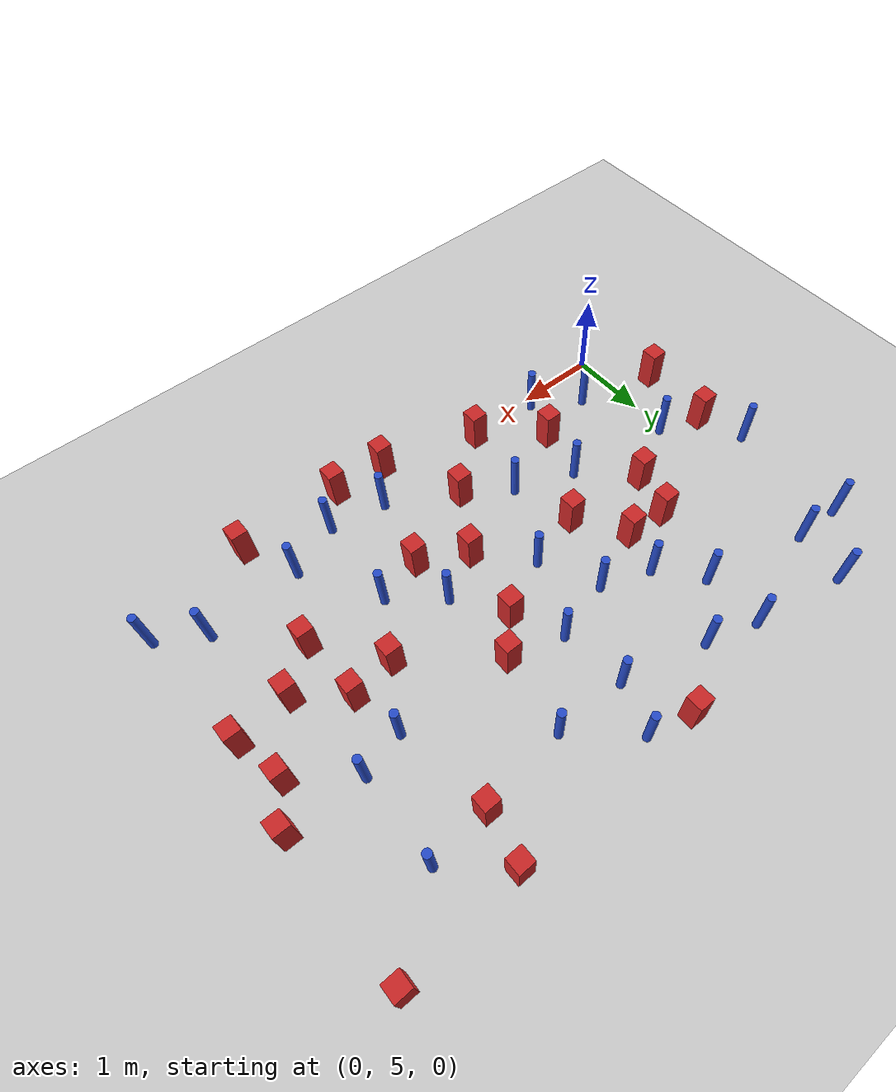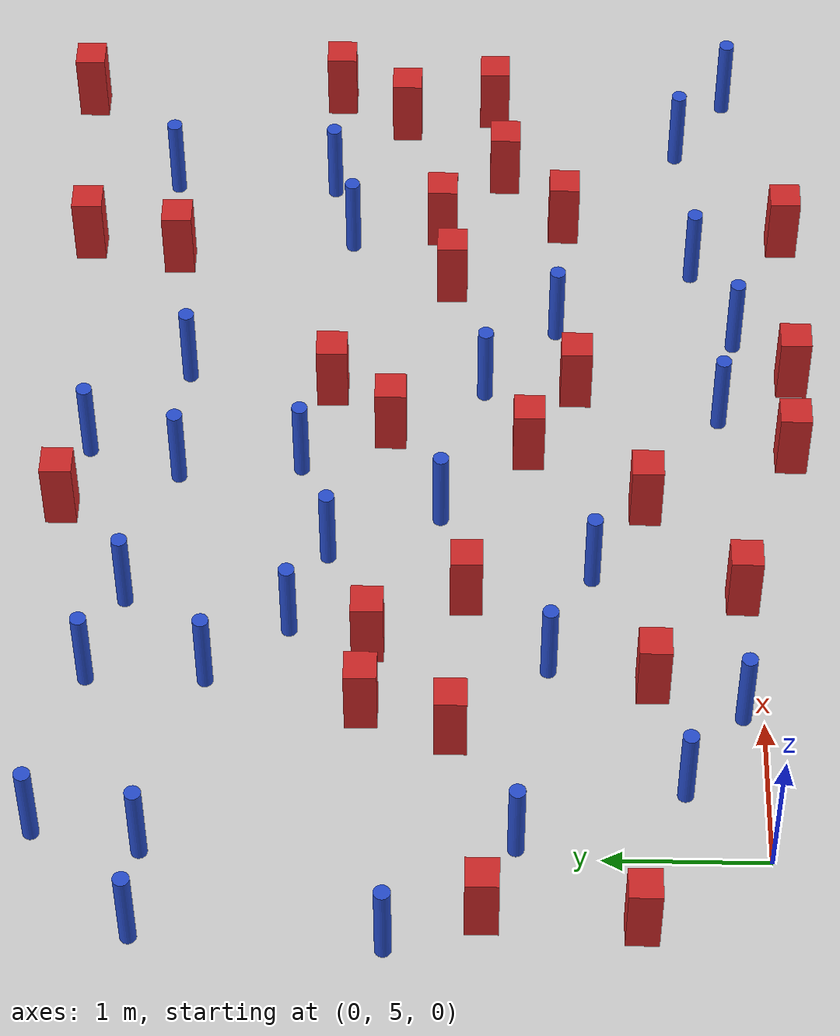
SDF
<sdf version="1.6">
 <world name="default">
  <model name="ground_plane">
   <static>1</static>
   <link name="link">
    <collision name="collision">
     <geometry><plane><normal>0 0 1</normal><size>100 100</size></plane></geometry>
     <surface><friction><ode><mu>100</mu><mu2>50</mu2></ode></friction></surface>
    </collision>
    <visual name="visual">
     <cast_shadows>0</cast_shadows>
     <geometry><plane><normal>0 0 1</normal><size>100 100</size></plane></geometry>
     <material>
      <ambient>1.0 1.0 1.0 1.0</ambient>
      <diffuse>0.8 0.8 0.8 1.0</diffuse>
      <specular>0.01 0.01 0.01 1.000000</specular>
     </material>
    </visual>
   </link>
  </model>
  <model name="pole_obstacle0">
   <static>true</static>
   <pose>0.06913718363 6.49851287385 7.38925637345e-09 -8.47170692798e-08 1.24976765034e-08 -1.74513093019e-07</pose>
   <link name="link">
    <pose>0 0 0.3 0 -0 0</pose>
    <inertial>
     <mass>1</mass>
     <inertia><ixx>0.145833</ixx><ixy>0</ixy><ixz>0</ixz><iyy>0.145833</iyy><iyz>0</iyz><izz>0.125</izz></inertia>
    </inertial>
    <collision name="collision">
     <geometry><cylinder><radius>0.05</radius><length>.6</length></cylinder></geometry>
    </collision>
    <visual name="visual">
     <geometry><cylinder><radius>0.05</radius><length>.6</length></cylinder></geometry>
     <material>
      <script><name>Gazebo/Blue</name><uri>file://media/materials/scripts/gazebo.material</uri></script>
     </material>
    </visual>
   </link>
  </model>
  <model name="pole_obstacle6">
   <static>true</static>
   <pose>4.7191671815 5.32754926063 7.38925637345e-09 -8.47170692796e-08 1.24976764786e-08 -1.74513093032e-07</pose>
   <link name="link">
    <pose>0 0 0.3 0 -0 0</pose>
    <inertial>
     <mass>1</mass>
     <inertia><ixx>0.145833</ixx><ixy>0</ixy><ixz>0</ixz><iyy>0.145833</iyy><iyz>0</iyz><izz>0.125</izz></inertia>
    </inertial>
    <collision name="collision">
     <geometry><cylinder><radius>0.05</radius><length>.6</length></cylinder></geometry>
    </collision>
    <visual name="visual">
     <geometry><cylinder><radius>0.05</radius><length>.6</length></cylinder></geometry>
     <material>
      <script><name>Gazebo/Blue</name><uri>file://media/materials/scripts/gazebo.material</uri></script>
     </material>
    </visual>
   </link>
  </model>
  <model name="pole_obstacle10">
   <static>true</static>
   <pose>2.56371663117 6.97787891862 7.38925637345e-09 -8.47170692798e-08 1.24976765033e-08 -1.74513093019e-07</pose>
   <link name="link">
    <pose>0 0 0.3 0 -0 0</pose>
    <inertial>
     <mass>1</mass>
     <inertia><ixx>0.145833</ixx><ixy>0</ixy><ixz>0</ixz><iyy>0.145833</iyy><iyz>0</iyz><izz>0.125</izz></inertia>
    </inertial>
    <collision name="collision">
     <geometry><cylinder><radius>0.05</radius><length>.6</length></cylinder></geometry>
    </collision>
    <visual name="visual">
     <geometry><cylinder><radius>0.05</radius><length>.6</length></cylinder></geometry>
     <material>
      <script><name>Gazebo/Blue</name><uri>file://media/materials/scripts/gazebo.material</uri></script>
     </material>
    </visual>
   </link>
  </model>
  <model name="pole_obstacle11">
   <static>true</static>
   <pose>1.26733467987 8.39185915357 7.38925637345e-09 -8.47170692798e-08 1.24976764881e-08 -1.74513093027e-07</pose>
   <link name="link">
    <pose>0 0 0.3 0 -0 0</pose>
    <inertial>
     <mass>1</mass>
     <inertia><ixx>0.145833</ixx><ixy>0</ixy><ixz>0</ixz><iyy>0.145833</iyy><iyz>0</iyz><izz>0.125</izz></inertia>
    </inertial>
    <collision name="collision">
     <geometry><cylinder><radius>0.05</radius><length>.6</length></cylinder></geometry>
    </collision>
    <visual name="visual">
     <geometry><cylinder><radius>0.05</radius><length>.6</length></cylinder></geometry>
     <material>
      <script><name>Gazebo/Blue</name><uri>file://media/materials/scripts/gazebo.material</uri></script>
     </material>
    </visual>
   </link>
  </model>
  <model name="square_post_obstacle9">
   <static>true</static>
   <pose>3.08837517718 6.42418481295 1.91545236811e-07 -7.35059704564e-06 1.12565212e-07 2.39332434364e-05</pose>
   <link name="link">
    <pose>0 0 0.25 0 -0 0</pose>
    <inertial>
     <mass>100</mass>
     <inertia>
      <ixx>0.166667</ixx>
      <ixy>0</ixy>
      <ixz>0</ixz>
      <iyy>0.166667</iyy>
      <iyz>0</iyz>
      <izz>0.166667</izz>
     </inertia>
    </inertial>
    <collision name="collision"><geometry><box><size>.2 .2 .5</size></box></geometry></collision>
    <visual name="visual">
     <geometry><box><size>.2 .2 .5</size></box></geometry>
     <material>
      <script><name>Gazebo/Red</name><uri>file://media/materials/scripts/gazebo.material</uri></script>
     </material>
    </visual>
   </link>
  </model>
  <model name="pole_obstacle16">
   <static>true</static>
   <pose>2.89145582356 8.65972865751 7.38925637345e-09 -8.47170692793e-08 1.24976764408e-08 -1.74513093041e-07</pose>
   <link name="link">
    <pose>0 0 0.3 0 -0 0</pose>
    <inertial>
     <mass>1</mass>
     <inertia><ixx>0.145833</ixx><ixy>0</ixy><ixz>0</ixz><iyy>0.145833</iyy><iyz>0</iyz><izz>0.125</izz></inertia>
    </inertial>
    <collision name="collision">
     <geometry><cylinder><radius>0.05</radius><length>.6</length></cylinder></geometry>
    </collision>
    <visual name="visual">
     <geometry><cylinder><radius>0.05</radius><length>.6</length></cylinder></geometry>
     <material>
      <script><name>Gazebo/Blue</name><uri>file://media/materials/scripts/gazebo.material</uri></script>
     </material>
    </visual>
   </link>
  </model>
  <model name="pole_obstacle18">
   <static>true</static>
   <pose>1.66351790398 7.89716667779 7.38925637345e-09 -8.47170692799e-08 1.24976765033e-08 -1.74513093018e-07</pose>
   <link name="link">
    <pose>0 0 0.3 0 -0 0</pose>
    <inertial>
     <mass>1</mass>
     <inertia><ixx>0.145833</ixx><ixy>0</ixy><ixz>0</ixz><iyy>0.145833</iyy><iyz>0</iyz><izz>0.125</izz></inertia>
    </inertial>
    <collision name="collision">
     <geometry><cylinder><radius>0.05</radius><length>.6</length></cylinder></geometry>
    </collision>
    <visual name="visual">
     <geometry><cylinder><radius>0.05</radius><length>.6</length></cylinder></geometry>
     <material>
      <script><name>Gazebo/Blue</name><uri>file://media/materials/scripts/gazebo.material</uri></script>
     </material>
    </visual>
   </link>
  </model>
  <model name="square_post_obstacle15">
   <static>true</static>
   <pose>2.59474911007 9.38308326705 1.91545236811e-07 -7.35059704564e-06 1.12565212e-07 2.39332434364e-05</pose>
   <link name="link">
    <pose>0 0 0.25 0 -0 0</pose>
    <inertial>
     <mass>100</mass>
     <inertia>
      <ixx>0.166667</ixx>
      <ixy>0</ixy>
      <ixz>0</ixz>
      <iyy>0.166667</iyy>
      <iyz>0</iyz>
      <izz>0.166667</izz>
     </inertia>
    </inertial>
    <collision name="collision"><geometry><box><size>.2 .2 .5</size></box></geometry></collision>
    <visual name="visual">
     <geometry><box><size>.2 .2 .5</size></box></geometry>
     <material>
      <script><name>Gazebo/Red</name><uri>file://media/materials/scripts/gazebo.material</uri></script>
     </material>
    </visual>
   </link>
  </model>
  <model name="pole_obstacle23">
   <static>true</static>
   <pose>3.09948274819 9.24637442465 7.38925637345e-09 -8.47170692793e-08 1.24976764408e-08 -1.74513093041e-07</pose>
   <link name="link">
    <pose>0 0 0.3 0 -0 0</pose>
    <inertial>
     <mass>1</mass>
     <inertia><ixx>0.145833</ixx><ixy>0</ixy><ixz>0</ixz><iyy>0.145833</iyy><iyz>0</iyz><izz>0.125</izz></inertia>
    </inertial>
    <collision name="collision">
     <geometry><cylinder><radius>0.05</radius><length>.6</length></cylinder></geometry>
    </collision>
    <visual name="visual">
     <geometry><cylinder><radius>0.05</radius><length>.6</length></cylinder></geometry>
     <material>
      <script><name>Gazebo/Blue</name><uri>file://media/materials/scripts/gazebo.material</uri></script>
     </material>
    </visual>
   </link>
  </model>
  <model name="pole_obstacle24">
   <static>true</static>
   <pose>1.03663892771 5.12717030944 7.38925637345e-09 -8.47170692799e-08 1.24976765021e-08 -1.74513093019e-07</pose>
   <link name="link">
    <pose>0 0 0.3 0 -0 0</pose>
    <inertial>
     <mass>1</mass>
     <inertia><ixx>0.145833</ixx><ixy>0</ixy><ixz>0</ixz><iyy>0.145833</iyy><iyz>0</iyz><izz>0.125</izz></inertia>
    </inertial>
    <collision name="collision">
     <geometry><cylinder><radius>0.05</radius><length>.6</length></cylinder></geometry>
    </collision>
    <visual name="visual">
     <geometry><cylinder><radius>0.05</radius><length>.6</length></cylinder></geometry>
     <material>
      <script><name>Gazebo/Blue</name><uri>file://media/materials/scripts/gazebo.material</uri></script>
     </material>
    </visual>
   </link>
  </model>
  <model name="pole_obstacle34">
   <static>true</static>
   <pose>2.08735105164 6.02665805547 7.38925637345e-09 -8.47170692798e-08 1.24976765033e-08 -1.74513093019e-07</pose>
   <link name="link">
    <pose>0 0 0.3 0 -0 0</pose>
    <inertial>
     <mass>1</mass>
     <inertia><ixx>0.145833</ixx><ixy>0</ixy><ixz>0</ixz><iyy>0.145833</iyy><iyz>0</iyz><izz>0.125</izz></inertia>
    </inertial>
    <collision name="collision">
     <geometry><cylinder><radius>0.05</radius><length>.6</length></cylinder></geometry>
    </collision>
    <visual name="visual">
     <geometry><cylinder><radius>0.05</radius><length>.6</length></cylinder></geometry>
     <material>
      <script><name>Gazebo/Blue</name><uri>file://media/materials/scripts/gazebo.material</uri></script>
     </material>
    </visual>
   </link>
  </model>
  <model name="pole_obstacle38">
   <static>true</static>
   <pose>4.97219262088 7.61031190704 7.38925637345e-09 -8.47170692796e-08 1.24976764786e-08 -1.74513093032e-07</pose>
   <link name="link">
    <pose>0 0 0.3 0 -0 0</pose>
    <inertial>
     <mass>1</mass>
     <inertia><ixx>0.145833</ixx><ixy>0</ixy><ixz>0</ixz><iyy>0.145833</iyy><iyz>0</iyz><izz>0.125</izz></inertia>
    </inertial>
    <collision name="collision">
     <geometry><cylinder><radius>0.05</radius><length>.6</length></cylinder></geometry>
    </collision>
    <visual name="visual">
     <geometry><cylinder><radius>0.05</radius><length>.6</length></cylinder></geometry>
     <material>
      <script><name>Gazebo/Blue</name><uri>file://media/materials/scripts/gazebo.material</uri></script>
     </material>
    </visual>
   </link>
  </model>
  <model name="pole_obstacle48">
   <static>true</static>
   <pose>3.41018704005 5.18834909252 7.38925637345e-09 -8.47170692798e-08 1.24976765033e-08 -1.74513093019e-07</pose>
   <link name="link">
    <pose>0 0 0.3 0 -0 0</pose>
    <inertial>
     <mass>1</mass>
     <inertia><ixx>0.145833</ixx><ixy>0</ixy><ixz>0</ixz><iyy>0.145833</iyy><iyz>0</iyz><izz>0.125</izz></inertia>
    </inertial>
    <collision name="collision">
     <geometry><cylinder><radius>0.05</radius><length>.6</length></cylinder></geometry>
    </collision>
    <visual name="visual">
     <geometry><cylinder><radius>0.05</radius><length>.6</length></cylinder></geometry>
     <material>
      <script><name>Gazebo/Blue</name><uri>file://media/materials/scripts/gazebo.material</uri></script>
     </material>
    </visual>
   </link>
  </model>
  <model name="pole_obstacle50">
   <static>true</static>
   <pose>3.7580924912 8.64297103668 7.38925637345e-09 -8.47170692793e-08 1.24976764408e-08 -1.74513093041e-07</pose>
   <link name="link">
    <pose>0 0 0.3 0 -0 0</pose>
    <inertial>
     <mass>1</mass>
     <inertia><ixx>0.145833</ixx><ixy>0</ixy><ixz>0</ixz><iyy>0.145833</iyy><iyz>0</iyz><izz>0.125</izz></inertia>
    </inertial>
    <collision name="collision">
     <geometry><cylinder><radius>0.05</radius><length>.6</length></cylinder></geometry>
    </collision>
    <visual name="visual">
     <geometry><cylinder><radius>0.05</radius><length>.6</length></cylinder></geometry>
     <material>
      <script><name>Gazebo/Blue</name><uri>file://media/materials/scripts/gazebo.material</uri></script>
     </material>
    </visual>
   </link>
  </model>
  <model name="pole_obstacle52">
   <static>true</static>
   <pose>5.86340523189 5.39860439331 7.38925637345e-09 -8.47170692796e-08 1.24976764786e-08 -1.74513093032e-07</pose>
   <link name="link">
    <pose>0 0 0.3 0 -0 0</pose>
    <inertial>
     <mass>1</mass>
     <inertia><ixx>0.145833</ixx><ixy>0</ixy><ixz>0</ixz><iyy>0.145833</iyy><iyz>0</iyz><izz>0.125</izz></inertia>
    </inertial>
    <collision name="collision">
     <geometry><cylinder><radius>0.05</radius><length>.6</length></cylinder></geometry>
    </collision>
    <visual name="visual">
     <geometry><cylinder><radius>0.05</radius><length>.6</length></cylinder></geometry>
     <material>
      <script><name>Gazebo/Blue</name><uri>file://media/materials/scripts/gazebo.material</uri></script>
     </material>
    </visual>
   </link>
  </model>
  <model name="square_post_obstacle41">
   <static>true</static>
   <pose>3.25389064058 7.310379525 1.91545236811e-07 -7.35059704564e-06 1.12565212e-07 2.39332434364e-05</pose>
   <link name="link">
    <pose>0 0 0.25 0 -0 0</pose>
    <inertial>
     <mass>100</mass>
     <inertia>
      <ixx>0.166667</ixx>
      <ixy>0</ixy>
      <ixz>0</ixz>
      <iyy>0.166667</iyy>
      <iyz>0</iyz>
      <izz>0.166667</izz>
     </inertia>
    </inertial>
    <collision name="collision"><geometry><box><size>.2 .2 .5</size></box></geometry></collision>
    <visual name="visual">
     <geometry><box><size>.2 .2 .5</size></box></geometry>
     <material>
      <script><name>Gazebo/Red</name><uri>file://media/materials/scripts/gazebo.material</uri></script>
     </material>
    </visual>
   </link>
  </model>
  <model name="square_post_obstacle46">
   <static>true</static>
   <pose>3.74120101918 4.70402729156 1.91545236811e-07 -7.35059704564e-06 1.12565212e-07 2.39332434364e-05</pose>
   <link name="link">
    <pose>0 0 0.25 0 -0 0</pose>
    <inertial>
     <mass>100</mass>
     <inertia>
      <ixx>0.166667</ixx>
      <ixy>0</ixy>
      <ixz>0</ixz>
      <iyy>0.166667</iyy>
      <iyz>0</iyz>
      <izz>0.166667</izz>
     </inertia>
    </inertial>
    <collision name="collision"><geometry><box><size>.2 .2 .5</size></box></geometry></collision>
    <visual name="visual">
     <geometry><box><size>.2 .2 .5</size></box></geometry>
     <material>
      <script><name>Gazebo/Red</name><uri>file://media/materials/scripts/gazebo.material</uri></script>
     </material>
    </visual>
   </link>
  </model>
  <model name="square_post_obstacle55">
   <static>true</static>
   <pose>0.841137512634 6.89309208888 1.91545236811e-07 -7.35059704564e-06 1.12565212e-07 2.39332434364e-05</pose>
   <link name="link">
    <pose>0 0 0.25 0 -0 0</pose>
    <inertial>
     <mass>100</mass>
     <inertia>
      <ixx>0.166667</ixx>
      <ixy>0</ixy>
      <ixz>0</ixz>
      <iyy>0.166667</iyy>
      <iyz>0</iyz>
      <izz>0.166667</izz>
     </inertia>
    </inertial>
    <collision name="collision"><geometry><box><size>.2 .2 .5</size></box></geometry></collision>
    <visual name="visual">
     <geometry><box><size>.2 .2 .5</size></box></geometry>
     <material>
      <script><name>Gazebo/Red</name><uri>file://media/materials/scripts/gazebo.material</uri></script>
     </material>
    </visual>
   </link>
  </model>
  <model name="pole_obstacle75">
   <static>true</static>
   <pose>-0.629575286794 7.25526006723 7.38925637345e-09 -8.471706928e-08 1.24976765086e-08 -1.74513093015e-07</pose>
   <link name="link">
    <pose>0 0 0.3 0 -0 0</pose>
    <inertial>
     <mass>1</mass>
     <inertia><ixx>0.145833</ixx><ixy>0</ixy><ixz>0</ixz><iyy>0.145833</iyy><iyz>0</iyz><izz>0.125</izz></inertia>
    </inertial>
    <collision name="collision">
     <geometry><cylinder><radius>0.05</radius><length>.6</length></cylinder></geometry>
    </collision>
    <visual name="visual">
     <geometry><cylinder><radius>0.05</radius><length>.6</length></cylinder></geometry>
     <material>
      <script><name>Gazebo/Blue</name><uri>file://media/materials/scripts/gazebo.material</uri></script>
     </material>
    </visual>
   </link>
  </model>
  <model name="pole_obstacle81">
   <static>true</static>
   <pose>1.87521406289 8.92645468672 7.38925637345e-09 -8.47170692798e-08 1.24976764881e-08 -1.74513093027e-07</pose>
   <link name="link">
    <pose>0 0 0.3 0 -0 0</pose>
    <inertial>
     <mass>1</mass>
     <inertia><ixx>0.145833</ixx><ixy>0</ixy><ixz>0</ixz><iyy>0.145833</iyy><iyz>0</iyz><izz>0.125</izz></inertia>
    </inertial>
    <collision name="collision">
     <geometry><cylinder><radius>0.05</radius><length>.6</length></cylinder></geometry>
    </collision>
    <visual name="visual">
     <geometry><cylinder><radius>0.05</radius><length>.6</length></cylinder></geometry>
     <material>
      <script><name>Gazebo/Blue</name><uri>file://media/materials/scripts/gazebo.material</uri></script>
     </material>
    </visual>
   </link>
  </model>
  <model name="square_post_obstacle72">
   <static>true</static>
   <pose>-0.476830306932 5.77376576421 1.91545236811e-07 -7.35059704564e-06 1.12565212e-07 2.39332434364e-05</pose>
   <link name="link">
    <pose>0 0 0.25 0 -0 0</pose>
    <inertial>
     <mass>100</mass>
     <inertia>
      <ixx>0.166667</ixx>
      <ixy>0</ixy>
      <ixz>0</ixz>
      <iyy>0.166667</iyy>
      <iyz>0</iyz>
      <izz>0.166667</izz>
     </inertia>
    </inertial>
    <collision name="collision"><geometry><box><size>.2 .2 .5</size></box></geometry></collision>
    <visual name="visual">
     <geometry><box><size>.2 .2 .5</size></box></geometry>
     <material>
      <script><name>Gazebo/Red</name><uri>file://media/materials/scripts/gazebo.material</uri></script>
     </material>
    </visual>
   </link>
  </model>
  <model name="square_post_obstacle73">
   <static>true</static>
   <pose>6.12171127108 7.26810442006 1.91545236811e-07 -7.35059704564e-06 1.12565212e-07 2.39332434364e-05</pose>
   <link name="link">
    <pose>0 0 0.25 0 -0 0</pose>
    <inertial>
     <mass>100</mass>
     <inertia>
      <ixx>0.166667</ixx>
      <ixy>0</ixy>
      <ixz>0</ixz>
      <iyy>0.166667</iyy>
      <iyz>0</iyz>
      <izz>0.166667</izz>
     </inertia>
    </inertial>
    <collision name="collision"><geometry><box><size>.2 .2 .5</size></box></geometry></collision>
    <visual name="visual">
     <geometry><box><size>.2 .2 .5</size></box></geometry>
     <material>
      <script><name>Gazebo/Red</name><uri>file://media/materials/scripts/gazebo.material</uri></script>
     </material>
    </visual>
   </link>
  </model>
  <model name="pole_obstacle103">
   <static>true</static>
   <pose>0.0164495735375 8.69850535766 7.38925637345e-09 -8.47170692797e-08 1.24976764811e-08 -1.74513093031e-07</pose>
   <link name="link">
    <pose>0 0 0.3 0 -0 0</pose>
    <inertial>
     <mass>1</mass>
     <inertia><ixx>0.145833</ixx><ixy>0</ixy><ixz>0</ixz><iyy>0.145833</iyy><iyz>0</iyz><izz>0.125</izz></inertia>
    </inertial>
    <collision name="collision">
     <geometry><cylinder><radius>0.05</radius><length>.6</length></cylinder></geometry>
    </collision>
    <visual name="visual">
     <geometry><cylinder><radius>0.05</radius><length>.6</length></cylinder></geometry>
     <material>
      <script><name>Gazebo/Blue</name><uri>file://media/materials/scripts/gazebo.material</uri></script>
     </material>
    </visual>
   </link>
  </model>
  <model name="square_post_obstacle101">
   <static>true</static>
   <pose>3.6330050609 6.11711212902 1.91545236811e-07 -7.35059704564e-06 1.12565212e-07 2.39332434364e-05</pose>
   <link name="link">
    <pose>0 0 0.25 0 -0 0</pose>
    <inertial>
     <mass>100</mass>
     <inertia>
      <ixx>0.166667</ixx>
      <ixy>0</ixy>
      <ixz>0</ixz>
      <iyy>0.166667</iyy>
      <iyz>0</iyz>
      <izz>0.166667</izz>
     </inertia>
    </inertial>
    <collision name="collision"><geometry><box><size>.2 .2 .5</size></box></geometry></collision>
    <visual name="visual">
     <geometry><box><size>.2 .2 .5</size></box></geometry>
     <material>
      <script><name>Gazebo/Red</name><uri>file://media/materials/scripts/gazebo.material</uri></script>
     </material>
    </visual>
   </link>
  </model>
  <model name="pole_obstacle110">
   <static>true</static>
   <pose>5.51786944674 8.83826286695 7.38925637345e-09 -8.471706928e-08 1.24976765081e-08 -1.74513093015e-07</pose>
   <link name="link">
    <pose>0 0 0.3 0 -0 0</pose>
    <inertial>
     <mass>1</mass>
     <inertia><ixx>0.145833</ixx><ixy>0</ixy><ixz>0</ixz><iyy>0.145833</iyy><iyz>0</iyz><izz>0.125</izz></inertia>
    </inertial>
    <collision name="collision">
     <geometry><cylinder><radius>0.05</radius><length>.6</length></cylinder></geometry>
    </collision>
    <visual name="visual">
     <geometry><cylinder><radius>0.05</radius><length>.6</length></cylinder></geometry>
     <material>
      <script><name>Gazebo/Blue</name><uri>file://media/materials/scripts/gazebo.material</uri></script>
     </material>
    </visual>
   </link>
  </model>
  <model name="pole_obstacle113">
   <static>true</static>
   <pose>0.135582412131 9.34397354188 7.38925637345e-09 -8.47170692796e-08 1.2497676475e-08 -1.74513093035e-07</pose>
   <link name="link">
    <pose>0 0 0.3 0 -0 0</pose>
    <inertial>
     <mass>1</mass>
     <inertia><ixx>0.145833</ixx><ixy>0</ixy><ixz>0</ixz><iyy>0.145833</iyy><iyz>0</iyz><izz>0.125</izz></inertia>
    </inertial>
    <collision name="collision">
     <geometry><cylinder><radius>0.05</radius><length>.6</length></cylinder></geometry>
    </collision>
    <visual name="visual">
     <geometry><cylinder><radius>0.05</radius><length>.6</length></cylinder></geometry>
     <material>
      <script><name>Gazebo/Blue</name><uri>file://media/materials/scripts/gazebo.material</uri></script>
     </material>
    </visual>
   </link>
  </model>
  <model name="pole_obstacle115">
   <static>true</static>
   <pose>3.62986092397 6.70695579176 7.38925637345e-09 -8.47170692798e-08 1.24976765033e-08 -1.74513093019e-07</pose>
   <link name="link">
    <pose>0 0 0.3 0 -0 0</pose>
    <inertial>
     <mass>1</mass>
     <inertia><ixx>0.145833</ixx><ixy>0</ixy><ixz>0</ixz><iyy>0.145833</iyy><iyz>0</iyz><izz>0.125</izz></inertia>
    </inertial>
    <collision name="collision">
     <geometry><cylinder><radius>0.05</radius><length>.6</length></cylinder></geometry>
    </collision>
    <visual name="visual">
     <geometry><cylinder><radius>0.05</radius><length>.6</length></cylinder></geometry>
     <material>
      <script><name>Gazebo/Blue</name><uri>file://media/materials/scripts/gazebo.material</uri></script>
     </material>
    </visual>
   </link>
  </model>
  <model name="square_post_obstacle113">
   <static>true</static>
   <pose>1.02623892982 7.43310529987 1.91545236811e-07 -7.35059704564e-06 1.12565212e-07 2.39332434364e-05</pose>
   <link name="link">
    <pose>0 0 0.25 0 -0 0</pose>
    <inertial>
     <mass>100</mass>
     <inertia>
      <ixx>0.166667</ixx>
      <ixy>0</ixy>
      <ixz>0</ixz>
      <iyy>0.166667</iyy>
      <iyz>0</iyz>
      <izz>0.166667</izz>
     </inertia>
    </inertial>
    <collision name="collision"><geometry><box><size>.2 .2 .5</size></box></geometry></collision>
    <visual name="visual">
     <geometry><box><size>.2 .2 .5</size></box></geometry>
     <material>
      <script><name>Gazebo/Red</name><uri>file://media/materials/scripts/gazebo.material</uri></script>
     </material>
    </visual>
   </link>
  </model>
  <model name="square_post_obstacle115">
   <static>true</static>
   <pose>5.12754935427 6.18599092188 1.91545236811e-07 -7.35059704564e-06 1.12565212e-07 2.39332434364e-05</pose>
   <link name="link">
    <pose>0 0 0.25 0 -0 0</pose>
    <inertial>
     <mass>100</mass>
     <inertia>
      <ixx>0.166667</ixx>
      <ixy>0</ixy>
      <ixz>0</ixz>
      <iyy>0.166667</iyy>
      <iyz>0</iyz>
      <izz>0.166667</izz>
     </inertia>
    </inertial>
    <collision name="collision"><geometry><box><size>.2 .2 .5</size></box></geometry></collision>
    <visual name="visual">
     <geometry><box><size>.2 .2 .5</size></box></geometry>
     <material>
      <script><name>Gazebo/Red</name><uri>file://media/materials/scripts/gazebo.material</uri></script>
     </material>
    </visual>
   </link>
  </model>
  <model name="pole_obstacle118">
   <static>true</static>
   <pose>4.17704419485 6.24078442371 7.38925637345e-09 -8.47170692796e-08 1.24976764786e-08 -1.74513093032e-07</pose>
   <link name="link">
    <pose>0 0 0.3 0 -0 0</pose>
    <inertial>
     <mass>1</mass>
     <inertia><ixx>0.145833</ixx><ixy>0</ixy><ixz>0</ixz><iyy>0.145833</iyy><iyz>0</iyz><izz>0.125</izz></inertia>
    </inertial>
    <collision name="collision">
     <geometry><cylinder><radius>0.05</radius><length>.6</length></cylinder></geometry>
    </collision>
    <visual name="visual">
     <geometry><cylinder><radius>0.05</radius><length>.6</length></cylinder></geometry>
     <material>
      <script><name>Gazebo/Blue</name><uri>file://media/materials/scripts/gazebo.material</uri></script>
     </material>
    </visual>
   </link>
  </model>
  <model name="pole_obstacle119">
   <static>true</static>
   <pose>0.471834646249 5.49273716182 7.38925637345e-09 -8.471706928e-08 1.24976765095e-08 -1.74513093014e-07</pose>
   <link name="link">
    <pose>0 0 0.3 0 -0 0</pose>
    <inertial>
     <mass>1</mass>
     <inertia><ixx>0.145833</ixx><ixy>0</ixy><ixz>0</ixz><iyy>0.145833</iyy><iyz>0</iyz><izz>0.125</izz></inertia>
    </inertial>
    <collision name="collision">
     <geometry><cylinder><radius>0.05</radius><length>.6</length></cylinder></geometry>
    </collision>
    <visual name="visual">
     <geometry><cylinder><radius>0.05</radius><length>.6</length></cylinder></geometry>
     <material>
      <script><name>Gazebo/Blue</name><uri>file://media/materials/scripts/gazebo.material</uri></script>
     </material>
    </visual>
   </link>
  </model>
  <model name="pole_obstacle123">
   <static>true</static>
   <pose>2.24575333257 7.67896301552 7.38925637345e-09 -8.47170692798e-08 1.24976765033e-08 -1.74513093019e-07</pose>
   <link name="link">
    <pose>0 0 0.3 0 -0 0</pose>
    <inertial>
     <mass>1</mass>
     <inertia><ixx>0.145833</ixx><ixy>0</ixy><ixz>0</ixz><iyy>0.145833</iyy><iyz>0</iyz><izz>0.125</izz></inertia>
    </inertial>
    <collision name="collision">
     <geometry><cylinder><radius>0.05</radius><length>.6</length></cylinder></geometry>
    </collision>
    <visual name="visual">
     <geometry><cylinder><radius>0.05</radius><length>.6</length></cylinder></geometry>
     <material>
      <script><name>Gazebo/Blue</name><uri>file://media/materials/scripts/gazebo.material</uri></script>
     </material>
    </visual>
   </link>
  </model>
  <model name="square_post_obstacle125">
   <static>true</static>
   <pose>1.24010263945 5.67162683947 1.91545236811e-07 -7.35059704564e-06 1.12565212e-07 2.39332434364e-05</pose>
   <link name="link">
    <pose>0 0 0.25 0 -0 0</pose>
    <inertial>
     <mass>100</mass>
     <inertia>
      <ixx>0.166667</ixx>
      <ixy>0</ixy>
      <ixz>0</ixz>
      <iyy>0.166667</iyy>
      <iyz>0</iyz>
      <izz>0.166667</izz>
     </inertia>
    </inertial>
    <collision name="collision"><geometry><box><size>.2 .2 .5</size></box></geometry></collision>
    <visual name="visual">
     <geometry><box><size>.2 .2 .5</size></box></geometry>
     <material>
      <script><name>Gazebo/Red</name><uri>file://media/materials/scripts/gazebo.material</uri></script>
     </material>
    </visual>
   </link>
  </model>
  <model name="square_post_obstacle127">
   <static>true</static>
   <pose>5.60062957902 6.58591840053 1.91545236811e-07 -7.35059704564e-06 1.12565212e-07 2.39332434364e-05</pose>
   <link name="link">
    <pose>0 0 0.25 0 -0 0</pose>
    <inertial>
     <mass>100</mass>
     <inertia>
      <ixx>0.166667</ixx>
      <ixy>0</ixy>
      <ixz>0</ixz>
      <iyy>0.166667</iyy>
      <iyz>0</iyz>
      <izz>0.166667</izz>
     </inertia>
    </inertial>
    <collision name="collision"><geometry><box><size>.2 .2 .5</size></box></geometry></collision>
    <visual name="visual">
     <geometry><box><size>.2 .2 .5</size></box></geometry>
     <material>
      <script><name>Gazebo/Red</name><uri>file://media/materials/scripts/gazebo.material</uri></script>
     </material>
    </visual>
   </link>
  </model>
  <model name="square_post_obstacle144">
   <static>true</static>
   <pose>4.80235160647 8.77939330088 1.91545236811e-07 -7.35059704564e-06 1.12565212e-07 2.39332434364e-05</pose>
   <link name="link">
    <pose>0 0 0.25 0 -0 0</pose>
    <inertial>
     <mass>100</mass>
     <inertia>
      <ixx>0.166667</ixx>
      <ixy>0</ixy>
      <ixz>0</ixz>
      <iyy>0.166667</iyy>
      <iyz>0</iyz>
      <izz>0.166667</izz>
     </inertia>
    </inertial>
    <collision name="collision"><geometry><box><size>.2 .2 .5</size></box></geometry></collision>
    <visual name="visual">
     <geometry><box><size>.2 .2 .5</size></box></geometry>
     <material>
      <script><name>Gazebo/Red</name><uri>file://media/materials/scripts/gazebo.material</uri></script>
     </material>
    </visual>
   </link>
  </model>
  <model name="pole_obstacle154">
   <static>true</static>
   <pose>5.49394167411 7.75073303404 7.38925637345e-09 -8.47170692796e-08 1.24976764786e-08 -1.74513093032e-07</pose>
   <link name="link">
    <pose>0 0 0.3 0 -0 0</pose>
    <inertial>
     <mass>1</mass>
     <inertia><ixx>0.145833</ixx><ixy>0</ixy><ixz>0</ixz><iyy>0.145833</iyy><iyz>0</iyz><izz>0.125</izz></inertia>
    </inertial>
    <collision name="collision">
     <geometry><cylinder><radius>0.05</radius><length>.6</length></cylinder></geometry>
    </collision>
    <visual name="visual">
     <geometry><cylinder><radius>0.05</radius><length>.6</length></cylinder></geometry>
     <material>
      <script><name>Gazebo/Blue</name><uri>file://media/materials/scripts/gazebo.material</uri></script>
     </material>
    </visual>
   </link>
  </model>
  <model name="square_post_obstacle161">
   <static>true</static>
   <pose>1.92737560043 5.09710669569 1.91545236811e-07 -7.35059704564e-06 1.12565212e-07 2.39332434364e-05</pose>
   <link name="link">
    <pose>0 0 0.25 0 -0 0</pose>
    <inertial>
     <mass>100</mass>
     <inertia>
      <ixx>0.166667</ixx>
      <ixy>0</ixy>
      <ixz>0</ixz>
      <iyy>0.166667</iyy>
      <iyz>0</iyz>
      <izz>0.166667</izz>
     </inertia>
    </inertial>
    <collision name="collision"><geometry><box><size>.2 .2 .5</size></box></geometry></collision>
    <visual name="visual">
     <geometry><box><size>.2 .2 .5</size></box></geometry>
     <material>
      <script><name>Gazebo/Red</name><uri>file://media/materials/scripts/gazebo.material</uri></script>
     </material>
    </visual>
   </link>
  </model>
  <model name="square_post_obstacle164">
   <static>true</static>
   <pose>4.56234857309 6.93301241135 1.91545236811e-07 -7.35059704564e-06 1.12565212e-07 2.39332434364e-05</pose>
   <link name="link">
    <pose>0 0 0.25 0 -0 0</pose>
    <inertial>
     <mass>100</mass>
     <inertia>
      <ixx>0.166667</ixx>
      <ixy>0</ixy>
      <ixz>0</ixz>
      <iyy>0.166667</iyy>
      <iyz>0</iyz>
      <izz>0.166667</izz>
     </inertia>
    </inertial>
    <collision name="collision"><geometry><box><size>.2 .2 .5</size></box></geometry></collision>
    <visual name="visual">
     <geometry><box><size>.2 .2 .5</size></box></geometry>
     <material>
      <script><name>Gazebo/Red</name><uri>file://media/materials/scripts/gazebo.material</uri></script>
     </material>
    </visual>
   </link>
  </model>
  <model name="square_post_obstacle168">
   <static>true</static>
   <pose>6.38276295762 7.72981175289 1.91545236811e-07 -7.35059704564e-06 1.12565212e-07 2.39332434364e-05</pose>
   <link name="link">
    <pose>0 0 0.25 0 -0 0</pose>
    <inertial>
     <mass>100</mass>
     <inertia>
      <ixx>0.166667</ixx>
      <ixy>0</ixy>
      <ixz>0</ixz>
      <iyy>0.166667</iyy>
      <iyz>0</iyz>
      <izz>0.166667</izz>
     </inertia>
    </inertial>
    <collision name="collision"><geometry><box><size>.2 .2 .5</size></box></geometry></collision>
    <visual name="visual">
     <geometry><box><size>.2 .2 .5</size></box></geometry>
     <material>
      <script><name>Gazebo/Red</name><uri>file://media/materials/scripts/gazebo.material</uri></script>
     </material>
    </visual>
   </link>
  </model>
  <model name="square_post_obstacle169">
   <static>true</static>
   <pose>2.6396571789 5.68423059613 1.91545236811e-07 -7.35059704564e-06 1.12565212e-07 2.39332434364e-05</pose>
   <link name="link">
    <pose>0 0 0.25 0 -0 0</pose>
    <inertial>
     <mass>100</mass>
     <inertia>
      <ixx>0.166667</ixx>
      <ixy>0</ixy>
      <ixz>0</ixz>
      <iyy>0.166667</iyy>
      <iyz>0</iyz>
      <izz>0.166667</izz>
     </inertia>
    </inertial>
    <collision name="collision"><geometry><box><size>.2 .2 .5</size></box></geometry></collision>
    <visual name="visual">
     <geometry><box><size>.2 .2 .5</size></box></geometry>
     <material>
      <script><name>Gazebo/Red</name><uri>file://media/materials/scripts/gazebo.material</uri></script>
     </material>
    </visual>
   </link>
  </model>
  <model name="pole_obstacle172">
   <static>true</static>
   <pose>6.38388585843 5.05336401985 7.38925637345e-09 -8.47170692796e-08 1.24976764786e-08 -1.74513093032e-07</pose>
   <link name="link">
    <pose>0 0 0.3 0 -0 0</pose>
    <inertial>
     <mass>1</mass>
     <inertia><ixx>0.145833</ixx><ixy>0</ixy><ixz>0</ixz><iyy>0.145833</iyy><iyz>0</iyz><izz>0.125</izz></inertia>
    </inertial>
    <collision name="collision">
     <geometry><cylinder><radius>0.05</radius><length>.6</length></cylinder></geometry>
    </collision>
    <visual name="visual">
     <geometry><cylinder><radius>0.05</radius><length>.6</length></cylinder></geometry>
     <material>
      <script><name>Gazebo/Blue</name><uri>file://media/materials/scripts/gazebo.material</uri></script>
     </material>
    </visual>
   </link>
  </model>
  <model name="square_post_obstacle173">
   <static>true</static>
   <pose>1.89889758659 6.80920714232 1.91545236811e-07 -7.35059704564e-06 1.12565212e-07 2.39332434364e-05</pose>
   <link name="link">
    <pose>0 0 0.25 0 -0 0</pose>
    <inertial>
     <mass>100</mass>
     <inertia>
      <ixx>0.166667</ixx>
      <ixy>0</ixy>
      <ixz>0</ixz>
      <iyy>0.166667</iyy>
      <iyz>0</iyz>
      <izz>0.166667</izz>
     </inertia>
    </inertial>
    <collision name="collision"><geometry><box><size>.2 .2 .5</size></box></geometry></collision>
    <visual name="visual">
     <geometry><box><size>.2 .2 .5</size></box></geometry>
     <material>
      <script><name>Gazebo/Red</name><uri>file://media/materials/scripts/gazebo.material</uri></script>
     </material>
    </visual>
   </link>
  </model>
  <model name="pole_obstacle176">
   <static>true</static>
   <pose>4.08426969628 5.06841212958 7.38925637345e-09 -8.47170692796e-08 1.24976764786e-08 -1.74513093032e-07</pose>
   <link name="link">
    <pose>0 0 0.3 0 -0 0</pose>
    <inertial>
     <mass>1</mass>
     <inertia><ixx>0.145833</ixx><ixy>0</ixy><ixz>0</ixz><iyy>0.145833</iyy><iyz>0</iyz><izz>0.125</izz></inertia>
    </inertial>
    <collision name="collision">
     <geometry><cylinder><radius>0.05</radius><length>.6</length></cylinder></geometry>
    </collision>
    <visual name="visual">
     <geometry><cylinder><radius>0.05</radius><length>.6</length></cylinder></geometry>
     <material>
      <script><name>Gazebo/Blue</name><uri>file://media/materials/scripts/gazebo.material</uri></script>
     </material>
    </visual>
   </link>
  </model>
  <model name="square_post_obstacle178">
   <static>true</static>
   <pose>4.92241376947 9.38927456103 1.91545236811e-07 -7.35059704564e-06 1.12565212e-07 2.39332434364e-05</pose>
   <link name="link">
    <pose>0 0 0.25 0 -0 0</pose>
    <inertial>
     <mass>100</mass>
     <inertia>
      <ixx>0.166667</ixx>
      <ixy>0</ixy>
      <ixz>0</ixz>
      <iyy>0.166667</iyy>
      <iyz>0</iyz>
      <izz>0.166667</izz>
     </inertia>
    </inertial>
    <collision name="collision"><geometry><box><size>.2 .2 .5</size></box></geometry></collision>
    <visual name="visual">
     <geometry><box><size>.2 .2 .5</size></box></geometry>
     <material>
      <script><name>Gazebo/Red</name><uri>file://media/materials/scripts/gazebo.material</uri></script>
     </material>
    </visual>
   </link>
  </model>
  <model name="pole_obstacle185">
   <static>true</static>
   <pose>1.26682216108 9.12170607301 7.38925637345e-09 -8.47170692798e-08 1.24976764881e-08 -1.74513093027e-07</pose>
   <link name="link">
    <pose>0 0 0.3 0 -0 0</pose>
    <inertial>
     <mass>1</mass>
     <inertia><ixx>0.145833</ixx><ixy>0</ixy><ixz>0</ixz><iyy>0.145833</iyy><iyz>0</iyz><izz>0.125</izz></inertia>
    </inertial>
    <collision name="collision">
     <geometry><cylinder><radius>0.05</radius><length>.6</length></cylinder></geometry>
    </collision>
    <visual name="visual">
     <geometry><cylinder><radius>0.05</radius><length>.6</length></cylinder></geometry>
     <material>
      <script><name>Gazebo/Blue</name><uri>file://media/materials/scripts/gazebo.material</uri></script>
     </material>
    </visual>
   </link>
  </model>
  <model name="square_post_obstacle187">
   <static>true</static>
   <pose>6.33510782715 9.48451586315 1.91545236811e-07 -7.35059704564e-06 1.12565212e-07 2.39332434364e-05</pose>
   <link name="link">
    <pose>0 0 0.25 0 -0 0</pose>
    <inertial>
     <mass>100</mass>
     <inertia>
      <ixx>0.166667</ixx>
      <ixy>0</ixy>
      <ixz>0</ixz>
      <iyy>0.166667</iyy>
      <iyz>0</iyz>
      <izz>0.166667</izz>
     </inertia>
    </inertial>
    <collision name="collision"><geometry><box><size>.2 .2 .5</size></box></geometry></collision>
    <visual name="visual">
     <geometry><box><size>.2 .2 .5</size></box></geometry>
     <material>
      <script><name>Gazebo/Red</name><uri>file://media/materials/scripts/gazebo.material</uri></script>
     </material>
    </visual>
   </link>
  </model>
  <model name="square_post_obstacle188">
   <static>true</static>
   <pose>6.25481726373 6.65954838816 1.91545236811e-07 -7.35059704564e-06 1.12565212e-07 2.39332434364e-05</pose>
   <link name="link">
    <pose>0 0 0.25 0 -0 0</pose>
    <inertial>
     <mass>100</mass>
     <inertia>
      <ixx>0.166667</ixx>
      <ixy>0</ixy>
      <ixz>0</ixz>
      <iyy>0.166667</iyy>
      <iyz>0</iyz>
      <izz>0.166667</izz>
     </inertia>
    </inertial>
    <collision name="collision"><geometry><box><size>.2 .2 .5</size></box></geometry></collision>
    <visual name="visual">
     <geometry><box><size>.2 .2 .5</size></box></geometry>
     <material>
      <script><name>Gazebo/Red</name><uri>file://media/materials/scripts/gazebo.material</uri></script>
     </material>
    </visual>
   </link>
  </model>
  <model name="square_post_obstacle192">
   <static>true</static>
   <pose>5.09067248791 7.00671385909 1.91545236811e-07 -7.35059704564e-06 1.12565212e-07 2.39332434364e-05</pose>
   <link name="link">
    <pose>0 0 0.25 0 -0 0</pose>
    <inertial>
     <mass>100</mass>
     <inertia>
      <ixx>0.166667</ixx>
      <ixy>0</ixy>
      <ixz>0</ixz>
      <iyy>0.166667</iyy>
      <iyz>0</iyz>
      <izz>0.166667</izz>
     </inertia>
    </inertial>
    <collision name="collision"><geometry><box><size>.2 .2 .5</size></box></geometry></collision>
    <visual name="visual">
     <geometry><box><size>.2 .2 .5</size></box></geometry>
     <material>
      <script><name>Gazebo/Red</name><uri>file://media/materials/scripts/gazebo.material</uri></script>
     </material>
    </visual>
   </link>
  </model>
  <model name="square_post_obstacle194">
   <static>true</static>
   <pose>3.61821947377 7.69867191806 1.91545236811e-07 -7.35059704564e-06 1.12565212e-07 2.39332434364e-05</pose>
   <link name="link">
    <pose>0 0 0.25 0 -0 0</pose>
    <inertial>
     <mass>100</mass>
     <inertia>
      <ixx>0.166667</ixx>
      <ixy>0</ixy>
      <ixz>0</ixz>
      <iyy>0.166667</iyy>
      <iyz>0</iyz>
      <izz>0.166667</izz>
     </inertia>
    </inertial>
    <collision name="collision"><geometry><box><size>.2 .2 .5</size></box></geometry></collision>
    <visual name="visual">
     <geometry><box><size>.2 .2 .5</size></box></geometry>
     <material>
      <script><name>Gazebo/Red</name><uri>file://media/materials/scripts/gazebo.material</uri></script>
     </material>
    </visual>
   </link>
  </model>
  <model name="square_post_obstacle195">
   <static>true</static>
   <pose>1.52653508819 7.40824740964 1.91545236811e-07 -7.35059704564e-06 1.12565212e-07 2.39332434364e-05</pose>
   <link name="link">
    <pose>0 0 0.25 0 -0 0</pose>
    <inertial>
     <mass>100</mass>
     <inertia>
      <ixx>0.166667</ixx>
      <ixy>0</ixy>
      <ixz>0</ixz>
      <iyy>0.166667</iyy>
      <iyz>0</iyz>
      <izz>0.166667</izz>
     </inertia>
    </inertial>
    <collision name="collision"><geometry><box><size>.2 .2 .5</size></box></geometry></collision>
    <visual name="visual">
     <geometry><box><size>.2 .2 .5</size></box></geometry>
     <material>
      <script><name>Gazebo/Red</name><uri>file://media/materials/scripts/gazebo.material</uri></script>
     </material>
    </visual>
   </link>
  </model>
  <model name="pole_obstacle189">
   <static>true</static>
   <pose>2.96671124298 7.87620100672 7.38925637345e-09 -8.47170692798e-08 1.24976765033e-08 -1.74513093019e-07</pose>
   <link name="link">
    <pose>0 0 0.3 0 -0 0</pose>
    <inertial>
     <mass>1</mass>
     <inertia><ixx>0.145833</ixx><ixy>0</ixy><ixz>0</ixz><iyy>0.145833</iyy><iyz>0</iyz><izz>0.125</izz></inertia>
    </inertial>
    <collision name="collision">
     <geometry><cylinder><radius>0.05</radius><length>.6</length></cylinder></geometry>
    </collision>
    <visual name="visual">
     <geometry><cylinder><radius>0.05</radius><length>.6</length></cylinder></geometry>
     <material>
      <script><name>Gazebo/Blue</name><uri>file://media/materials/scripts/gazebo.material</uri></script>
     </material>
    </visual>
   </link>
  </model>
  <model name="square_post_obstacle199">
   <static>true</static>
   <pose>3.08988438357 4.73846190366 1.91545236811e-07 -7.35059704564e-06 1.12565212e-07 2.39332434364e-05</pose>
   <link name="link">
    <pose>0 0 0.25 0 -0 0</pose>
    <inertial>
     <mass>100</mass>
     <inertia>
      <ixx>0.166667</ixx>
      <ixy>0</ixy>
      <ixz>0</ixz>
      <iyy>0.166667</iyy>
      <iyz>0</iyz>
      <izz>0.166667</izz>
     </inertia>
    </inertial>
    <collision name="collision"><geometry><box><size>.2 .2 .5</size></box></geometry></collision>
    <visual name="visual">
     <geometry><box><size>.2 .2 .5</size></box></geometry>
     <material>
      <script><name>Gazebo/Red</name><uri>file://media/materials/scripts/gazebo.material</uri></script>
     </material>
    </visual>
   </link>
  </model>
  <model name="pole_obstacle197">
   <static>true</static>
   <pose>1.37200800988 6.30175303825 7.38925637345e-09 -8.47170692799e-08 1.24976765033e-08 -1.74513093018e-07</pose>
   <link name="link">
    <pose>0 0 0.3 0 -0 0</pose>
    <inertial>
     <mass>1</mass>
     <inertia><ixx>0.145833</ixx><ixy>0</ixy><ixz>0</ixz><iyy>0.145833</iyy><iyz>0</iyz><izz>0.125</izz></inertia>
    </inertial>
    <collision name="collision">
     <geometry><cylinder><radius>0.05</radius><length>.6</length></cylinder></geometry>
    </collision>
    <visual name="visual">
     <geometry><cylinder><radius>0.05</radius><length>.6</length></cylinder></geometry>
     <material>
      <script><name>Gazebo/Blue</name><uri>file://media/materials/scripts/gazebo.material</uri></script>
     </material>
    </visual>
   </link>
  </model>
  <model name="pole_obstacle203">
   <static>true</static>
   <pose>-0.567605744811 8.71758834565 7.38925637345e-09 -8.47170692797e-08 1.249767648e-08 -1.74513093032e-07</pose>
   <link name="link">
    <pose>0 0 0.3 0 -0 0</pose>
    <inertial>
     <mass>1</mass>
     <inertia><ixx>0.145833</ixx><ixy>0</ixy><ixz>0</ixz><iyy>0.145833</iyy><iyz>0</iyz><izz>0.125</izz></inertia>
    </inertial>
    <collision name="collision">
     <geometry><cylinder><radius>0.05</radius><length>.6</length></cylinder></geometry>
    </collision>
    <visual name="visual">
     <geometry><cylinder><radius>0.05</radius><length>.6</length></cylinder></geometry>
     <material>
      <script><name>Gazebo/Blue</name><uri>file://media/materials/scripts/gazebo.material</uri></script>
     </material>
    </visual>
   </link>
  </model>
  <model name="square_post_obstacle222">
   <static>true</static>
   <pose>5.0167799648 4.70965998808 1.91545236811e-07 -7.35059704564e-06 1.12565212e-07 2.39332434364e-05</pose>
   <link name="link">
    <pose>0 0 0.25 0 -0 0</pose>
    <inertial>
     <mass>100</mass>
     <inertia>
      <ixx>0.166667</ixx>
      <ixy>0</ixy>
      <ixz>0</ixz>
      <iyy>0.166667</iyy>
      <iyz>0</iyz>
      <izz>0.166667</izz>
     </inertia>
    </inertial>
    <collision name="collision"><geometry><box><size>.2 .2 .5</size></box></geometry></collision>
    <visual name="visual">
     <geometry><box><size>.2 .2 .5</size></box></geometry>
     <material>
      <script><name>Gazebo/Red</name><uri>file://media/materials/scripts/gazebo.material</uri></script>
     </material>
    </visual>
   </link>
  </model>
  <model name="square_post_obstacle225">
   <static>true</static>
   <pose>-0.419468035195 6.69582998808 1.91545236811e-07 -7.35059704564e-06 1.12565212e-07 2.39332434364e-05</pose>
   <link name="link">
    <pose>0 0 0.25 0 -0 0</pose>
    <inertial>
     <mass>100</mass>
     <inertia>
      <ixx>0.166667</ixx>
      <ixy>0</ixy>
      <ixz>0</ixz>
      <iyy>0.166667</iyy>
      <iyz>0</iyz>
      <izz>0.166667</izz>
     </inertia>
    </inertial>
    <collision name="collision"><geometry><box><size>.2 .2 .5</size></box></geometry></collision>
    <visual name="visual">
     <geometry><box><size>.2 .2 .5</size></box></geometry>
     <material>
      <script><name>Gazebo/Red</name><uri>file://media/materials/scripts/gazebo.material</uri></script>
     </material>
    </visual>
   </link>
  </model>
 </world>
</sdf>
